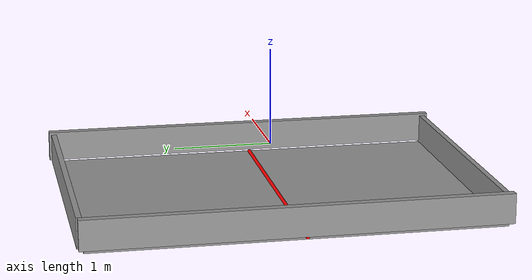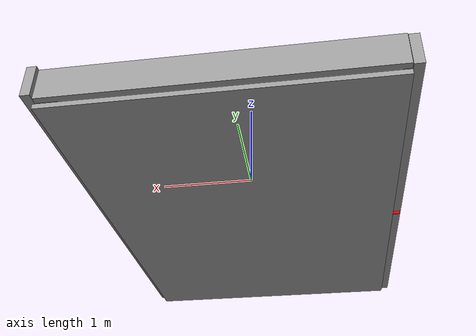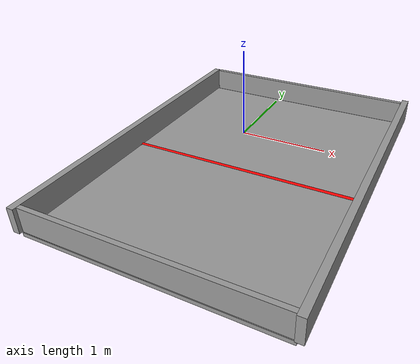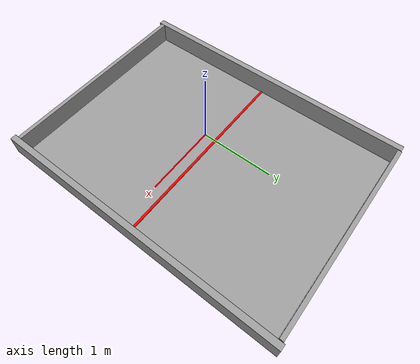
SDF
<?xml version='1.0'?>
<sdf version='1.7'>
  <model name='playground'>
    <link name='link'>
      <inertial>
        <mass>1</mass>
        <inertia>
          <ixx>0.166667</ixx>
          <ixy>0</ixy>
          <ixz>0</ixz>
          <iyy>0.166667</iyy>
          <iyz>0</iyz>
          <izz>0.166667</izz>
        </inertia>
        <pose>0 0 0 0 -0 0</pose>
      </inertial>
      <self_collide>0</self_collide>
      <enable_wind>0</enable_wind>
      <kinematic>0</kinematic>
      <pose>0 -0.002283 -0.499307 0 -0 0</pose>
      <gravity>1</gravity>
      <visual name='visual'>
        <geometry>
          <box>
            <size>0 0 0</size>
          </box>
        </geometry>
        <material>
          <script>
            <name>Gazebo/Grey</name>
            <uri>file://media/materials/scripts/gazebo.material</uri>
          </script>
          <shader type='pixel'>
            <normal_map>__default__</normal_map>
          </shader>
          <ambient>1 0.8 0.5 1</ambient>
          <diffuse>0.7 0.7 0.7 1</diffuse>
          <specular>0.01 0.01 0.01 1</specular>
          <emissive>0 0 0 1</emissive>
        </material>
        <pose>0 0 0 0 -0 0</pose>
        <transparency>0</transparency>
        <cast_shadows>1</cast_shadows>
      </visual>
      <collision name='collision'>
        <laser_retro>0</laser_retro>
        <max_contacts>10</max_contacts>
        <pose>0 0 0 0 -0 0</pose>
        <geometry>
          <box>
            <size>0 0 0</size>
          </box>
        </geometry>
        <surface>
          <friction>
            <ode>
              <mu>1</mu>
              <mu2>1</mu2>
              <fdir1>0 0 0</fdir1>
              <slip1>0</slip1>
              <slip2>0</slip2>
            </ode>
            <torsional>
              <coefficient>1</coefficient>
              <patch_radius>0</patch_radius>
              <surface_radius>0</surface_radius>
              <use_patch_radius>1</use_patch_radius>
              <ode>
                <slip>0</slip>
              </ode>
            </torsional>
          </friction>
          <bounce>
            <restitution_coefficient>0</restitution_coefficient>
            <threshold>1e+06</threshold>
          </bounce>
          <contact>
            <collide_without_contact>0</collide_without_contact>
            <collide_without_contact_bitmask>1</collide_without_contact_bitmask>
            <collide_bitmask>1</collide_bitmask>
            <ode>
              <soft_cfm>0</soft_cfm>
              <soft_erp>0.2</soft_erp>
              <kp>1e+13</kp>
              <kd>1</kd>
              <max_vel>0.01</max_vel>
              <min_depth>0</min_depth>
            </ode>
            <bullet>
              <split_impulse>1</split_impulse>
              <split_impulse_penetration_threshold>-0.01</split_impulse_penetration_threshold>
              <soft_cfm>0</soft_cfm>
              <soft_erp>0.2</soft_erp>
              <kp>1e+13</kp>
              <kd>1</kd>
            </bullet>
          </contact>
        </surface>
      </collision>
      <collision name='collision_1'>
        <laser_retro>0</laser_retro>
        <max_contacts>10</max_contacts>
        <pose>0 0 0 0 -0 0</pose>
        <geometry>
          <box>
            <size>0 0 0</size>
          </box>
        </geometry>
        <surface>
          <friction>
            <ode>
              <mu>1</mu>
              <mu2>1</mu2>
              <fdir1>0 0 0</fdir1>
              <slip1>0</slip1>
              <slip2>0</slip2>
            </ode>
            <torsional>
              <coefficient>1</coefficient>
              <patch_radius>0</patch_radius>
              <surface_radius>0</surface_radius>
              <use_patch_radius>1</use_patch_radius>
              <ode>
                <slip>0</slip>
              </ode>
            </torsional>
          </friction>
          <bounce>
            <restitution_coefficient>0</restitution_coefficient>
            <threshold>1e+06</threshold>
          </bounce>
          <contact>
            <collide_without_contact>0</collide_without_contact>
            <collide_without_contact_bitmask>1</collide_without_contact_bitmask>
            <collide_bitmask>1</collide_bitmask>
            <ode>
              <soft_cfm>0</soft_cfm>
              <soft_erp>0.2</soft_erp>
              <kp>1e+13</kp>
              <kd>1</kd>
              <max_vel>0.01</max_vel>
              <min_depth>0</min_depth>
            </ode>
            <bullet>
              <split_impulse>1</split_impulse>
              <split_impulse_penetration_threshold>-0.01</split_impulse_penetration_threshold>
              <soft_cfm>0</soft_cfm>
              <soft_erp>0.2</soft_erp>
              <kp>1e+13</kp>
              <kd>1</kd>
            </bullet>
          </contact>
        </surface>
      </collision>
    </link>
    <link name='link_1'>
      <inertial>
        <mass>0.121152</mass>
        <inertia>
          <ixx>0.00100336</ixx>
          <ixy>0</ixy>
          <ixz>0</ixz>
          <iyy>0.0900028</iyy>
          <iyz>0</iyz>
          <izz>0.0890657</izz>
        </inertia>
        <pose>0 0 0 0 -0 0</pose>
      </inertial>
      <pose>-0.010327 2.13144 -0.345337 0 -0 0</pose>
      <gravity>1</gravity>
      <self_collide>0</self_collide>
      <kinematic>0</kinematic>
      <enable_wind>0</enable_wind>
      <visual name='visual'>
        <pose>0 0 0 0 -0 0</pose>
        <geometry>
          <box>
            <size>2.96962 0.057291 0.31</size>
          </box>
        </geometry>
        <material>
          <lighting>1</lighting>
          <script>
            <uri>file://media/materials/scripts/gazebo.material</uri>
            <name>Gazebo/Grey</name>
          </script>
          <shader type='pixel'>
            <normal_map>__default__</normal_map>
          </shader>
          <ambient>0.3 0.3 0.3 1</ambient>
          <diffuse>0.7 0.7 0.7 1</diffuse>
          <specular>0.01 0.01 0.01 1</specular>
          <emissive>0 0 0 1</emissive>
        </material>
        <transparency>0</transparency>
        <cast_shadows>1</cast_shadows>
      </visual>
      <collision name='collision'>
        <laser_retro>0</laser_retro>
        <max_contacts>10</max_contacts>
        <pose>0 0 0 0 -0 0</pose>
        <geometry>
          <box>
            <size>2.96962 0.057291 0.31</size>
          </box>
        </geometry>
        <surface>
          <friction>
            <ode>
              <mu>1</mu>
              <mu2>1</mu2>
              <fdir1>0 0 0</fdir1>
              <slip1>0</slip1>
              <slip2>0</slip2>
            </ode>
            <torsional>
              <coefficient>1</coefficient>
              <patch_radius>0</patch_radius>
              <surface_radius>0</surface_radius>
              <use_patch_radius>1</use_patch_radius>
              <ode>
                <slip>0</slip>
              </ode>
            </torsional>
          </friction>
          <bounce>
            <restitution_coefficient>0</restitution_coefficient>
            <threshold>1e+06</threshold>
          </bounce>
          <contact>
            <collide_without_contact>0</collide_without_contact>
            <collide_without_contact_bitmask>1</collide_without_contact_bitmask>
            <collide_bitmask>1</collide_bitmask>
            <ode>
              <soft_cfm>0</soft_cfm>
              <soft_erp>0.2</soft_erp>
              <kp>1e+13</kp>
              <kd>1</kd>
              <max_vel>0.01</max_vel>
              <min_depth>0</min_depth>
            </ode>
            <bullet>
              <split_impulse>1</split_impulse>
              <split_impulse_penetration_threshold>-0.01</split_impulse_penetration_threshold>
              <soft_cfm>0</soft_cfm>
              <soft_erp>0.2</soft_erp>
              <kp>1e+13</kp>
              <kd>1</kd>
            </bullet>
          </contact>
        </surface>
      </collision>
    </link>
    <link name='link_1_clone'>
      <inertial>
        <mass>0.123107</mass>
        <inertia>
          <ixx>0.00101956</ixx>
          <ixy>0</ixy>
          <ixz>0</ixz>
          <iyy>0.0943997</iyy>
          <iyz>0</iyz>
          <izz>0.0934475</izz>
        </inertia>
        <pose>0 0 0 0 -0 0</pose>
      </inertial>
      <pose>0.00759 -2.0665 -0.345337 0 -0 0</pose>
      <gravity>1</gravity>
      <self_collide>0</self_collide>
      <kinematic>0</kinematic>
      <enable_wind>0</enable_wind>
      <visual name='visual'>
        <pose>0 0 0 0 -0 0</pose>
        <geometry>
          <box>
            <size>3.01755 0.057291 0.31</size>
          </box>
        </geometry>
        <material>
          <lighting>1</lighting>
          <script>
            <uri>file://media/materials/scripts/gazebo.material</uri>
            <name>Gazebo/Grey</name>
          </script>
          <shader type='pixel'>
            <normal_map>__default__</normal_map>
          </shader>
          <ambient>0.3 0.3 0.3 1</ambient>
          <diffuse>0.7 0.7 0.7 1</diffuse>
          <specular>0.01 0.01 0.01 1</specular>
          <emissive>0 0 0 1</emissive>
        </material>
        <transparency>0</transparency>
        <cast_shadows>1</cast_shadows>
      </visual>
      <collision name='collision'>
        <laser_retro>0</laser_retro>
        <max_contacts>10</max_contacts>
        <pose>0 0 0 0 -0 0</pose>
        <geometry>
          <box>
            <size>3.01755 0.057291 0.31</size>
          </box>
        </geometry>
        <surface>
          <friction>
            <ode>
              <mu>1</mu>
              <mu2>1</mu2>
              <fdir1>0 0 0</fdir1>
              <slip1>0</slip1>
              <slip2>0</slip2>
            </ode>
            <torsional>
              <coefficient>1</coefficient>
              <patch_radius>0</patch_radius>
              <surface_radius>0</surface_radius>
              <use_patch_radius>1</use_patch_radius>
              <ode>
                <slip>0</slip>
              </ode>
            </torsional>
          </friction>
          <bounce>
            <restitution_coefficient>0</restitution_coefficient>
            <threshold>1e+06</threshold>
          </bounce>
          <contact>
            <collide_without_contact>0</collide_without_contact>
            <collide_without_contact_bitmask>1</collide_without_contact_bitmask>
            <collide_bitmask>1</collide_bitmask>
            <ode>
              <soft_cfm>0</soft_cfm>
              <soft_erp>0.2</soft_erp>
              <kp>1e+13</kp>
              <kd>1</kd>
              <max_vel>0.01</max_vel>
              <min_depth>0</min_depth>
            </ode>
            <bullet>
              <split_impulse>1</split_impulse>
              <split_impulse_penetration_threshold>-0.01</split_impulse_penetration_threshold>
              <soft_cfm>0</soft_cfm>
              <soft_erp>0.2</soft_erp>
              <kp>1e+13</kp>
              <kd>1</kd>
            </bullet>
          </contact>
        </surface>
      </collision>
    </link>
    <link name='link_2'>
      <inertial>
        <mass>0.372974</mass>
        <inertia>
          <ixx>0.580856</ixx>
          <ixy>0</ixy>
          <ixz>0</ixz>
          <iyy>0.00321904</iyy>
          <iyz>0</iyz>
          <izz>0.578101</izz>
        </inertia>
        <pose>0 0 0 0 -0 0</pose>
      </inertial>
      <pose>1.53112 0.026666 -0.324043 0 -0 0</pose>
      <gravity>1</gravity>
      <self_collide>0</self_collide>
      <kinematic>0</kinematic>
      <enable_wind>0</enable_wind>
      <visual name='visual'>
        <pose>0 0 0 0 -0 0</pose>
        <geometry>
          <box>
            <size>0.086422 4.31188 0.31</size>
          </box>
        </geometry>
        <material>
          <lighting>1</lighting>
          <script>
            <uri>file://media/materials/scripts/gazebo.material</uri>
            <name>Gazebo/Grey</name>
          </script>
          <shader type='pixel'>
            <normal_map>__default__</normal_map>
          </shader>
          <ambient>0.3 0.3 0.3 1</ambient>
          <diffuse>0.7 0.7 0.7 1</diffuse>
          <specular>0.01 0.01 0.01 1</specular>
          <emissive>0 0 0 1</emissive>
        </material>
        <transparency>0</transparency>
        <cast_shadows>1</cast_shadows>
      </visual>
      <collision name='collision'>
        <laser_retro>0</laser_retro>
        <max_contacts>10</max_contacts>
        <pose>0 0 0 0 -0 0</pose>
        <geometry>
          <box>
            <size>0.086422 4.31188 0.31</size>
          </box>
        </geometry>
        <surface>
          <friction>
            <ode>
              <mu>1</mu>
              <mu2>1</mu2>
              <fdir1>0 0 0</fdir1>
              <slip1>0</slip1>
              <slip2>0</slip2>
            </ode>
            <torsional>
              <coefficient>1</coefficient>
              <patch_radius>0</patch_radius>
              <surface_radius>0</surface_radius>
              <use_patch_radius>1</use_patch_radius>
              <ode>
                <slip>0</slip>
              </ode>
            </torsional>
          </friction>
          <bounce>
            <restitution_coefficient>0</restitution_coefficient>
            <threshold>1e+06</threshold>
          </bounce>
          <contact>
            <collide_without_contact>0</collide_without_contact>
            <collide_without_contact_bitmask>1</collide_without_contact_bitmask>
            <collide_bitmask>1</collide_bitmask>
            <ode>
              <soft_cfm>0</soft_cfm>
              <soft_erp>0.2</soft_erp>
              <kp>1e+13</kp>
              <kd>1</kd>
              <max_vel>0.01</max_vel>
              <min_depth>0</min_depth>
            </ode>
            <bullet>
              <split_impulse>1</split_impulse>
              <split_impulse_penetration_threshold>-0.01</split_impulse_penetration_threshold>
              <soft_cfm>0</soft_cfm>
              <soft_erp>0.2</soft_erp>
              <kp>1e+13</kp>
              <kd>1</kd>
            </bullet>
          </contact>
        </surface>
      </collision>
    </link>
    <link name='link_2_clone'>
      <inertial>
        <mass>0.370687</mass>
        <inertia>
          <ixx>0.570304</ixx>
          <ixy>0</ixy>
          <ixz>0</ixz>
          <iyy>0.0031993</iyy>
          <iyz>0</iyz>
          <izz>0.567566</izz>
        </inertia>
        <pose>0 0 0 0 -0 0</pose>
      </inertial>
      <pose>-1.544 0.003876 -0.342781 0 -0 0</pose>
      <gravity>1</gravity>
      <self_collide>0</self_collide>
      <kinematic>0</kinematic>
      <enable_wind>0</enable_wind>
      <visual name='visual'>
        <pose>0 0 0 0 -0 0</pose>
        <geometry>
          <box>
            <size>0.086422 4.28555 0.31</size>
          </box>
        </geometry>
        <material>
          <lighting>1</lighting>
          <script>
            <uri>file://media/materials/scripts/gazebo.material</uri>
            <name>Gazebo/Grey</name>
          </script>
          <shader type='pixel'>
            <normal_map>__default__</normal_map>
          </shader>
          <ambient>0.3 0.3 0.3 1</ambient>
          <diffuse>0.7 0.7 0.7 1</diffuse>
          <specular>0.01 0.01 0.01 1</specular>
          <emissive>0 0 0 1</emissive>
        </material>
        <transparency>0</transparency>
        <cast_shadows>1</cast_shadows>
      </visual>
      <collision name='collision'>
        <laser_retro>0</laser_retro>
        <max_contacts>10</max_contacts>
        <pose>0 0 0 0 -0 0</pose>
        <geometry>
          <box>
            <size>0.086422 4.28555 0.31</size>
          </box>
        </geometry>
        <surface>
          <friction>
            <ode>
              <mu>1</mu>
              <mu2>1</mu2>
              <fdir1>0 0 0</fdir1>
              <slip1>0</slip1>
              <slip2>0</slip2>
            </ode>
            <torsional>
              <coefficient>1</coefficient>
              <patch_radius>0</patch_radius>
              <surface_radius>0</surface_radius>
              <use_patch_radius>1</use_patch_radius>
              <ode>
                <slip>0</slip>
              </ode>
            </torsional>
          </friction>
          <bounce>
            <restitution_coefficient>0</restitution_coefficient>
            <threshold>1e+06</threshold>
          </bounce>
          <contact>
            <collide_without_contact>0</collide_without_contact>
            <collide_without_contact_bitmask>1</collide_without_contact_bitmask>
            <collide_bitmask>1</collide_bitmask>
            <ode>
              <soft_cfm>0</soft_cfm>
              <soft_erp>0.2</soft_erp>
              <kp>1e+13</kp>
              <kd>1</kd>
              <max_vel>0.01</max_vel>
              <min_depth>0</min_depth>
            </ode>
            <bullet>
              <split_impulse>1</split_impulse>
              <split_impulse_penetration_threshold>-0.01</split_impulse_penetration_threshold>
              <soft_cfm>0</soft_cfm>
              <soft_erp>0.2</soft_erp>
              <kp>1e+13</kp>
              <kd>1</kd>
            </bullet>
          </contact>
        </surface>
      </collision>
    </link>
    <link name='link_5'>
      <inertial>
        <mass>0.00432614</mass>
        <inertia>
          <ixx>0.00334707</ixx>
          <ixy>0</ixy>
          <ixz>0</ixz>
          <iyy>0.00334707</iyy>
          <iyz>0</iyz>
          <izz>7.71183e-07</izz>
        </inertia>
        <pose>0 0 0 0 -0 0</pose>
      </inertial>
      <pose>-0.052752 -0.05273 -0.499967 -3.14157 -1.56877 3.14158</pose>
      <gravity>1</gravity>
      <self_collide>0</self_collide>
      <kinematic>0</kinematic>
      <enable_wind>0</enable_wind>
      <visual name='visual'>
        <pose>0 0 0 0 -0 0</pose>
        <geometry>
          <cylinder>
            <radius>0.0188818</radius>
            <length>3.04683</length>
          </cylinder>
        </geometry>
        <material>
          <lighting>1</lighting>
          <script>
            <uri>file://media/materials/scripts/gazebo.material</uri>
            <name>Gazebo/Grey</name>
          </script>
          <shader type='pixel'>
            <normal_map>__default__</normal_map>
          </shader>
          <ambient>1 0 0 0</ambient>
          <diffuse>1 0 0 0</diffuse>
          <specular>1 0 0 0</specular>
          <emissive>0 0 0 1</emissive>
        </material>
        <transparency>0</transparency>
        <cast_shadows>1</cast_shadows>
      </visual>
      <collision name='collision'>
        <laser_retro>0</laser_retro>
        <max_contacts>10</max_contacts>
        <pose>0 0 0 0 -0 0</pose>
        <geometry>
          <cylinder>
            <radius>0.018882</radius>
            <length>3.04683</length>
          </cylinder>
        </geometry>
        <surface>
          <friction>
            <ode>
              <mu>1</mu>
              <mu2>1</mu2>
              <fdir1>0 0 0</fdir1>
              <slip1>0</slip1>
              <slip2>0</slip2>
            </ode>
            <torsional>
              <coefficient>1</coefficient>
              <patch_radius>0</patch_radius>
              <surface_radius>0</surface_radius>
              <use_patch_radius>1</use_patch_radius>
              <ode>
                <slip>0</slip>
              </ode>
            </torsional>
          </friction>
          <bounce>
            <restitution_coefficient>0</restitution_coefficient>
            <threshold>1e+06</threshold>
          </bounce>
          <contact>
            <collide_without_contact>0</collide_without_contact>
            <collide_without_contact_bitmask>1</collide_without_contact_bitmask>
            <collide_bitmask>1</collide_bitmask>
            <ode>
              <soft_cfm>0</soft_cfm>
              <soft_erp>0.2</soft_erp>
              <kp>1e+13</kp>
              <kd>1</kd>
              <max_vel>0.01</max_vel>
              <min_depth>0</min_depth>
            </ode>
            <bullet>
              <split_impulse>1</split_impulse>
              <split_impulse_penetration_threshold>-0.01</split_impulse_penetration_threshold>
              <soft_cfm>0</soft_cfm>
              <soft_erp>0.2</soft_erp>
              <kp>1e+13</kp>
              <kd>1</kd>
            </bullet>
          </contact>
        </surface>
      </collision>
    </link>
    <link name='link_8'>
      <inertial>
        <mass>1</mass>
        <inertia>
          <ixx>0.166667</ixx>
          <ixy>0</ixy>
          <ixz>0</ixz>
          <iyy>0.166667</iyy>
          <iyz>0</iyz>
          <izz>0.166667</izz>
        </inertia>
        <pose>0 0 0 0 -0 0</pose>
      </inertial>
      <pose>0.000807 -0.004095 -0.523819 0 -0 0</pose>
      <gravity>1</gravity>
      <self_collide>0</self_collide>
      <kinematic>0</kinematic>
      <enable_wind>0</enable_wind>
      <visual name='visual'>
        <pose>0 0 0 0 -0 0</pose>
        <geometry>
          <box>
            <size>3 4.2 0.05</size>
          </box>
        </geometry>
        <material>
          <lighting>1</lighting>
          <script>
            <uri>file://media/materials/scripts/gazebo.material</uri>
            <name>Gazebo/Grey</name>
          </script>
          <shader type='pixel'>
            <normal_map>__default__</normal_map>
          </shader>
          <ambient>0.3 0.3 0.3 1</ambient>
          <diffuse>0.7 0.7 0.7 1</diffuse>
          <specular>0.01 0.01 0.01 1</specular>
          <emissive>0 0 0 1</emissive>
        </material>
        <transparency>0</transparency>
        <cast_shadows>1</cast_shadows>
      </visual>
      <collision name='collision'>
        <laser_retro>0</laser_retro>
        <max_contacts>10</max_contacts>
        <pose>0 0 0 0 -0 0</pose>
        <geometry>
          <box>
            <size>3 4.2 0.05</size>
          </box>
        </geometry>
        <surface>
          <friction>
            <ode>
              <mu>1</mu>
              <mu2>1</mu2>
              <fdir1>0 0 0</fdir1>
              <slip1>0</slip1>
              <slip2>0</slip2>
            </ode>
            <torsional>
              <coefficient>1</coefficient>
              <patch_radius>0</patch_radius>
              <surface_radius>0</surface_radius>
              <use_patch_radius>1</use_patch_radius>
              <ode>
                <slip>0</slip>
              </ode>
            </torsional>
          </friction>
          <bounce>
            <restitution_coefficient>0</restitution_coefficient>
            <threshold>1e+06</threshold>
          </bounce>
          <contact>
            <collide_without_contact>0</collide_without_contact>
            <collide_without_contact_bitmask>1</collide_without_contact_bitmask>
            <collide_bitmask>1</collide_bitmask>
            <ode>
              <soft_cfm>0</soft_cfm>
              <soft_erp>0.2</soft_erp>
              <kp>1e+13</kp>
              <kd>1</kd>
              <max_vel>0.01</max_vel>
              <min_depth>0</min_depth>
            </ode>
            <bullet>
              <split_impulse>1</split_impulse>
              <split_impulse_penetration_threshold>-0.01</split_impulse_penetration_threshold>
              <soft_cfm>0</soft_cfm>
              <soft_erp>0.2</soft_erp>
              <kp>1e+13</kp>
              <kd>1</kd>
            </bullet>
          </contact>
        </surface>
      </collision>
    </link>
    <static>1</static>
    <allow_auto_disable>1</allow_auto_disable>
  </model>
</sdf>
